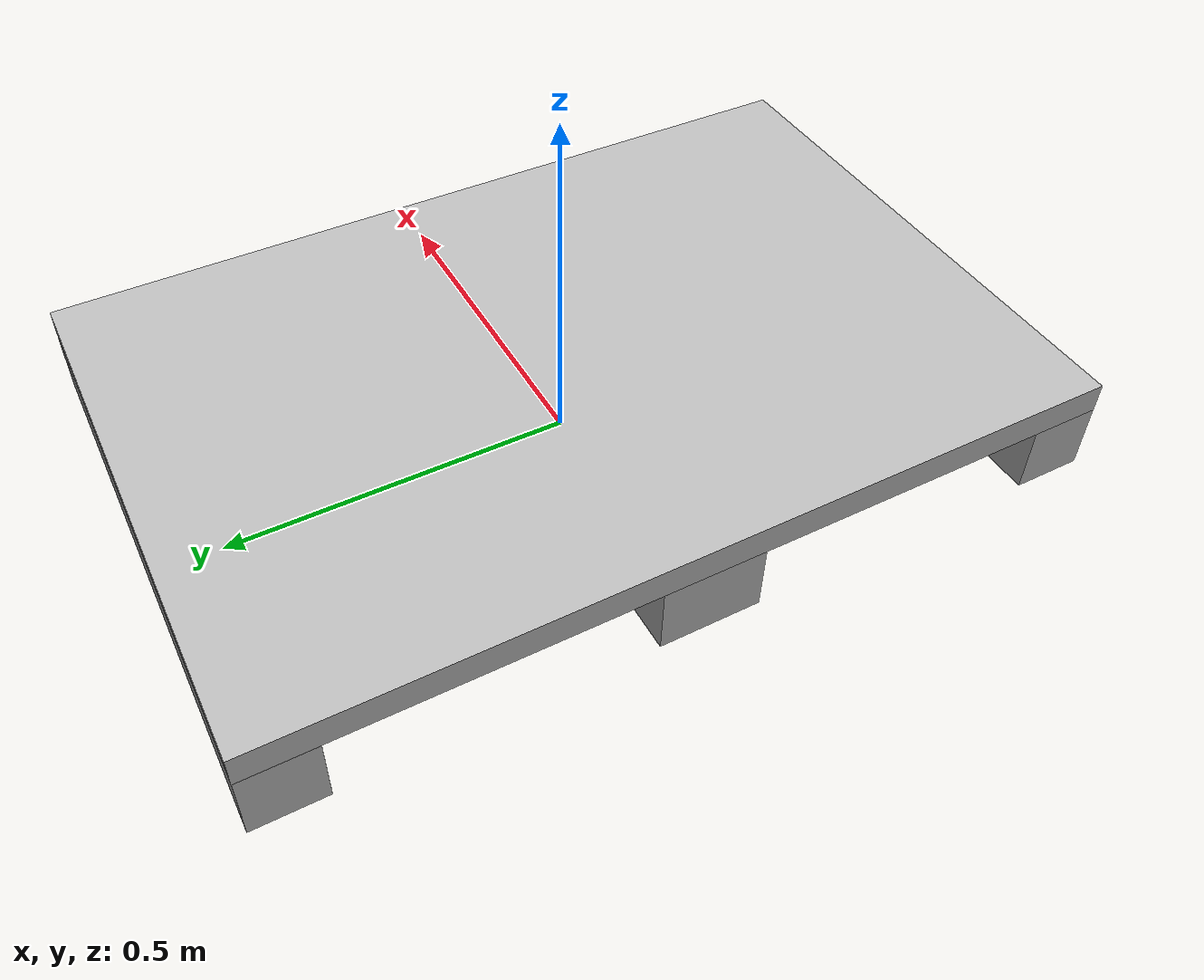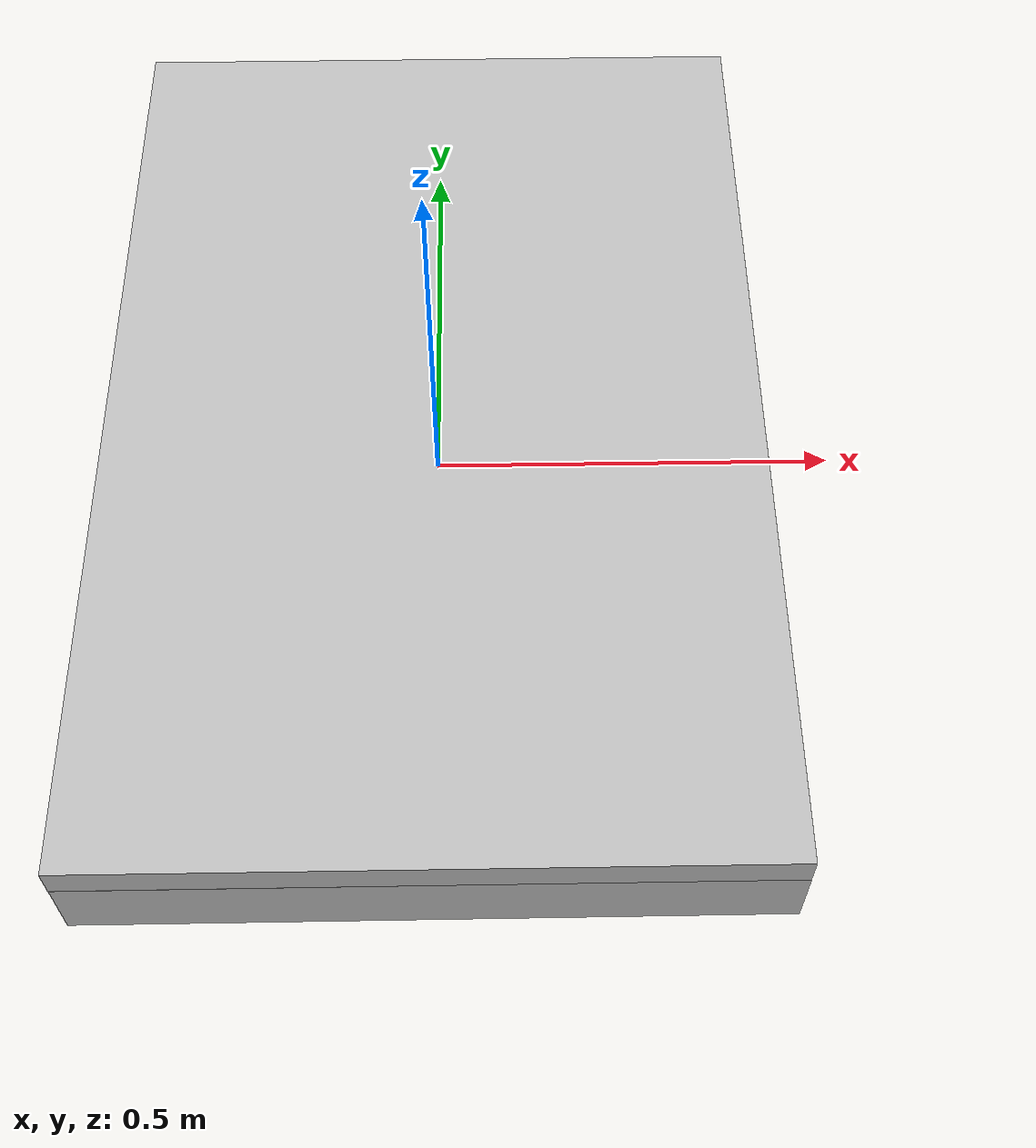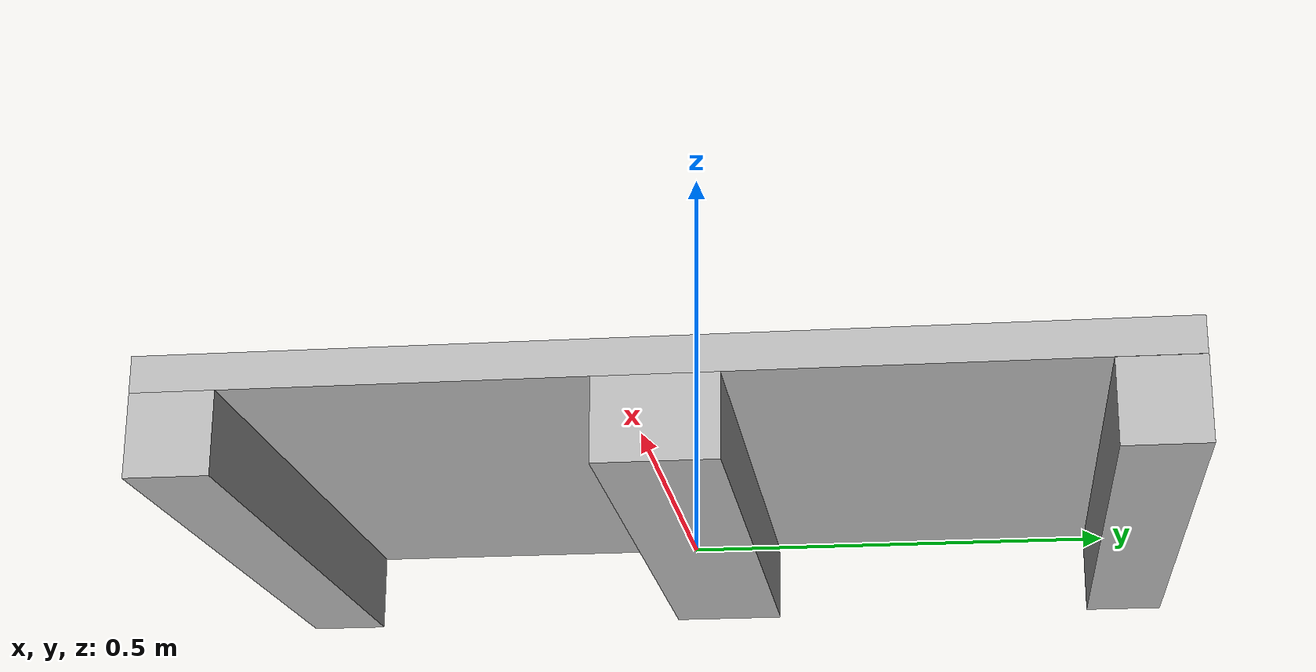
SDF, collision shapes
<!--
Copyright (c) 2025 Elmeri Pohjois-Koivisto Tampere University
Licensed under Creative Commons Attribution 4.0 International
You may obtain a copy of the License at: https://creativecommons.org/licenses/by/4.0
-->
<?xml version="1.0"?>

<sdf version="1.7">
    <model name="euro_pallet">
        <plugin
            filename="gz-sim-pose-publisher-system"
            name="gz::sim::systems::PosePublisher">

            <publish_link_pose>false</publish_link_pose>
            <publish_collision_pose>false</publish_collision_pose>
            <publish_visual_pose>false</publish_visual_pose>
            <publish_nested_model_pose>true</publish_nested_model_pose>
            <publish_model_pose>true</publish_model_pose>
            <use_pose_vector_msg>true</use_pose_vector_msg>
        </plugin>

        <static>false</static>
        <link name="link">
            <!--
            Avoid self-collision between the five collision geometries
            inside this link. Default is false, but set explicitly
            to document the intention.
            -->
            <self_collide>false</self_collide>

            <visual name="visual">
                <geometry>
                    <mesh>
                        <uri>model://euro_pallet/meshes/euro_pallet.dae</uri>
                        <scale>1 1 1</scale>
                    </mesh>
                </geometry>
                <pose relative_to="link">0 0 0 0 0 1.57</pose>
            </visual>

            <collision name="pallet_top_collision">
                <geometry>
                    <box>
                        <size>1.20 0.8 0.044</size>
                    </box>
                </geometry>
                <pose relative_to="link">0 0 0.122 0 0 1.57</pose>
                <surface>
                    <friction>
                        <ode>
                            <mu>1.0</mu>
                            <mu2>1.0</mu2>
                        </ode>
                    </friction>
                    <contact>
                        <ode>
                            <kp>10000000</kp>
                            <kd>1</kd>
                            <min_depth>0.001</min_depth>
                            <max_vel>0.1</max_vel>
                        </ode>
                    </contact>
                </surface>
            </collision>

            <collision name="pallet_center_collision">
                <geometry>
                    <box>
                        <size>0.8 0.145 0.1</size>
                    </box>
                </geometry>
                <pose relative_to="link">0 0 0.05 0 0 0</pose>
                <surface>
                    <friction>
                        <ode>
                            <mu>1.0</mu>
                            <mu2>1.0</mu2>
                        </ode>
                    </friction>
                    <contact>
                        <ode>
                            <kp>10000000</kp>
                            <kd>1</kd>
                            <min_depth>0.001</min_depth>
                            <max_vel>0.1</max_vel>
                        </ode>
                    </contact>
                </surface>
            </collision>

            <collision name="pallet_left_collision">
                <geometry>
                    <box>
                        <size>0.8 0.1 0.1</size>
                    </box>
                </geometry>
                <pose relative_to="link">0 -0.55 0.05 0 0 0</pose>
                <surface>
                    <friction>
                        <ode>
                            <mu>1.0</mu>
                            <mu2>1.0</mu2>
                        </ode>
                    </friction>
                    <contact>
                        <ode>
                            <kp>10000000</kp>
                            <kd>1</kd>
                            <min_depth>0.001</min_depth>
                            <max_vel>0.1</max_vel>
                        </ode>
                    </contact>
                </surface>
            </collision>

            <collision name="pallet_right_collision">
                <geometry>
                    <box>
                        <size>0.8 0.1 0.1</size>
                    </box>
                </geometry>
                <pose relative_to="link">0 0.55 0.05 0 0 0</pose>
                <surface>
                    <friction>
                        <ode>
                            <mu>1.0</mu>
                            <mu2>1.0</mu2>
                        </ode>
                    </friction>
                    <contact>
                        <ode>
                            <kp>10000000</kp>
                            <kd>1</kd>
                            <min_depth>0.001</min_depth>
                            <max_vel>0.1</max_vel>
                        </ode>
                    </contact>
                </surface>
            </collision>

            <inertial>
                <mass>25.0</mass>
                <inertia>
                    <ixx>1.3765</ixx>
                    <ixy>0.0</ixy>
                    <ixz>0.0</ixz>
                    <iyy>3.0432</iyy>
                    <iyz>0.0</iyz>
                    <izz>4.3333</izz>
                </inertia>
                <!--
                z = whole_body.size_z/2 = 0.144/2 = 0.072 m.
                -->
                <pose>0 0 0.072 0 0 0</pose>
            </inertial>
        </link>
    </model>
</sdf>
